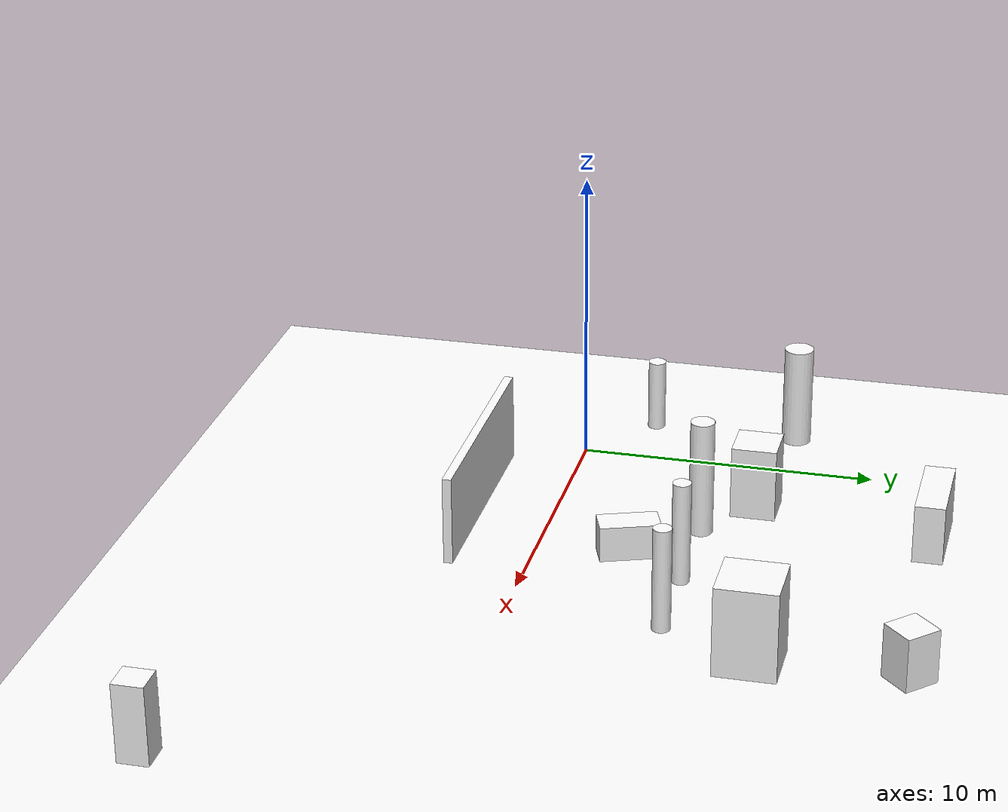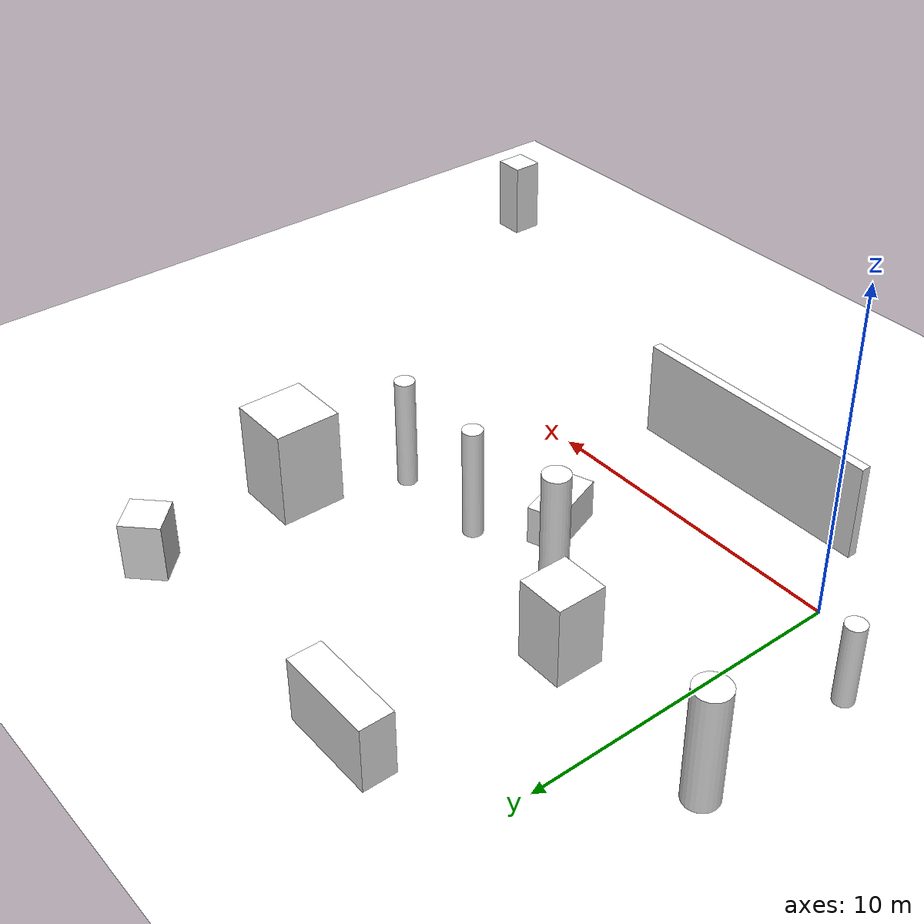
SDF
<?xml version="1.0" encoding="UTF-8"?>
<sdf version="1.9">
  <world name="demo_final">
    <physics type="ode">
      <max_step_size>0.004</max_step_size>
      <real_time_factor>1.0</real_time_factor>
      <real_time_update_rate>250</real_time_update_rate>
    </physics>
    <gravity>0 0 -9.8</gravity>
    <magnetic_field>6e-06 2.3e-05 -4.2e-05</magnetic_field>
    <atmosphere type="adiabatic"/>
    <scene>
      <grid>false</grid>
      <ambient>0.4 0.4 0.4 1</ambient>
      <background>0.7 0.7 0.7 1</background>
      <shadows>true</shadows>
    </scene>
    <model name="ground_plane">
      <static>true</static>
      <link name="link">
        <collision name="collision">
          <geometry>
            <plane>
              <normal>0 0 1</normal>
              <size>1 1</size>
            </plane>
          </geometry>
          <surface>
            <friction>
              <ode/>
            </friction>
            <bounce/>
            <contact/>
          </surface>
        </collision>
        <pose>0 0 0 0 -0 0</pose>
        <inertial>
          <pose>0 0 0 0 -0 0</pose>
          <mass>1</mass>
          <inertia>
            <ixx>1</ixx>
            <ixy>0</ixy>
            <ixz>0</ixz>
            <iyy>1</iyy>
            <iyz>0</iyz>
            <izz>1</izz>
          </inertia>
        </inertial>
        <enable_wind>false</enable_wind>
      </link>
      <pose>0 0 0 0 -0 0</pose>
      <self_collide>false</self_collide>
    </model>
    <include>
      <uri>model://flow_ground</uri>
    </include>
    <model name="pillar_centre">
      <static>true</static>
      <pose>5.0 5.0 2.0 0 0 0.000000</pose>
      <link name="link">
        <collision name="collision"><geometry><cylinder><radius>0.4</radius><length>4.0</length></cylinder></geometry></collision>
        <visual name="visual">
          <geometry><cylinder><radius>0.4</radius><length>4.0</length></cylinder></geometry>
          <material>
            <diffuse>1 1 1 1</diffuse>
            <pbr><metal>
              <albedo_map>model://flow_ground/materials/textures/flow_ground.png</albedo_map>
              <roughness>0.9</roughness><metalness>0.0</metalness>
            </metal></pbr>
          </material>
        </visual>
      </link>
    </model>
    <model name="box_tall">
      <static>true</static>
      <pose>3.0 6.5 1.25 0 0 0.000000</pose>
      <link name="link">
        <collision name="collision"><geometry><box><size>1.5 1.5 2.5</size></box></geometry></collision>
        <visual name="visual">
          <geometry><box><size>1.5 1.5 2.5</size></box></geometry>
          <material>
            <diffuse>1 1 1 1</diffuse>
            <pbr><metal>
              <albedo_map>model://flow_ground/materials/textures/flow_ground.png</albedo_map>
              <roughness>0.9</roughness><metalness>0.0</metalness>
            </metal></pbr>
          </material>
        </visual>
      </link>
    </model>
    <model name="box_low">
      <static>true</static>
      <pose>7.0 3.0 0.6 0 0 0.349066</pose>
      <link name="link">
        <collision name="collision"><geometry><box><size>1.0 2.0 1.2</size></box></geometry></collision>
        <visual name="visual">
          <geometry><box><size>1.0 2.0 1.2</size></box></geometry>
          <material>
            <diffuse>1 1 1 1</diffuse>
            <pbr><metal>
              <albedo_map>model://flow_ground/materials/textures/flow_ground.png</albedo_map>
              <roughness>0.9</roughness><metalness>0.0</metalness>
            </metal></pbr>
          </material>
        </visual>
      </link>
    </model>
    <model name="gate_west">
      <static>true</static>
      <pose>8.45 5.0 1.75 0 0 0.000000</pose>
      <link name="link">
        <collision name="collision"><geometry><cylinder><radius>0.3</radius><length>3.5</length></cylinder></geometry></collision>
        <visual name="visual">
          <geometry><cylinder><radius>0.3</radius><length>3.5</length></cylinder></geometry>
          <material>
            <diffuse>1 1 1 1</diffuse>
            <pbr><metal>
              <albedo_map>model://flow_ground/materials/textures/flow_ground.png</albedo_map>
              <roughness>0.9</roughness><metalness>0.0</metalness>
            </metal></pbr>
          </material>
        </visual>
      </link>
    </model>
    <model name="gate_east">
      <static>true</static>
      <pose>11.55 5.0 1.75 0 0 0.000000</pose>
      <link name="link">
        <collision name="collision"><geometry><cylinder><radius>0.3</radius><length>3.5</length></cylinder></geometry></collision>
        <visual name="visual">
          <geometry><cylinder><radius>0.3</radius><length>3.5</length></cylinder></geometry>
          <material>
            <diffuse>1 1 1 1</diffuse>
            <pbr><metal>
              <albedo_map>model://flow_ground/materials/textures/flow_ground.png</albedo_map>
              <roughness>0.9</roughness><metalness>0.0</metalness>
            </metal></pbr>
          </material>
        </visual>
      </link>
    </model>
    <model name="wall_south">
      <static>true</static>
      <pose>5.0 -2.5 1.5 0 0 0.000000</pose>
      <link name="link">
        <collision name="collision"><geometry><box><size>8.0 0.3 3.0</size></box></geometry></collision>
        <visual name="visual">
          <geometry><box><size>8.0 0.3 3.0</size></box></geometry>
          <material>
            <diffuse>1 1 1 1</diffuse>
            <pbr><metal>
              <albedo_map>model://flow_ground/materials/textures/flow_ground.png</albedo_map>
              <roughness>0.9</roughness><metalness>0.0</metalness>
            </metal></pbr>
          </material>
        </visual>
      </link>
    </model>
    <model name="box_east">
      <static>true</static>
      <pose>13.0 8.0 1.5 0 0 0.000000</pose>
      <link name="link">
        <collision name="collision"><geometry><box><size>2.0 2.0 3.0</size></box></geometry></collision>
        <visual name="visual">
          <geometry><box><size>2.0 2.0 3.0</size></box></geometry>
          <material>
            <diffuse>1 1 1 1</diffuse>
            <pbr><metal>
              <albedo_map>model://flow_ground/materials/textures/flow_ground.png</albedo_map>
              <roughness>0.9</roughness><metalness>0.0</metalness>
            </metal></pbr>
          </material>
        </visual>
      </link>
    </model>
    <model name="box_north">
      <static>true</static>
      <pose>4.0 12.5 1.0 0 0 0.000000</pose>
      <link name="link">
        <collision name="collision"><geometry><box><size>3.0 1.0 2.0</size></box></geometry></collision>
        <visual name="visual">
          <geometry><box><size>3.0 1.0 2.0</size></box></geometry>
          <material>
            <diffuse>1 1 1 1</diffuse>
            <pbr><metal>
              <albedo_map>model://flow_ground/materials/textures/flow_ground.png</albedo_map>
              <roughness>0.9</roughness><metalness>0.0</metalness>
            </metal></pbr>
          </material>
        </visual>
      </link>
    </model>
    <model name="pillar_nw">
      <static>true</static>
      <pose>-2.5 7.0 1.75 0 0 0.000000</pose>
      <link name="link">
        <collision name="collision"><geometry><cylinder><radius>0.5</radius><length>3.5</length></cylinder></geometry></collision>
        <visual name="visual">
          <geometry><cylinder><radius>0.5</radius><length>3.5</length></cylinder></geometry>
          <material>
            <diffuse>1 1 1 1</diffuse>
            <pbr><metal>
              <albedo_map>model://flow_ground/materials/textures/flow_ground.png</albedo_map>
              <roughness>0.9</roughness><metalness>0.0</metalness>
            </metal></pbr>
          </material>
        </visual>
      </link>
    </model>
    <model name="pillar_sw">
      <static>true</static>
      <pose>-2.5 2.0 1.25 0 0 0.000000</pose>
      <link name="link">
        <collision name="collision"><geometry><cylinder><radius>0.3</radius><length>2.5</length></cylinder></geometry></collision>
        <visual name="visual">
          <geometry><cylinder><radius>0.3</radius><length>2.5</length></cylinder></geometry>
          <material>
            <diffuse>1 1 1 1</diffuse>
            <pbr><metal>
              <albedo_map>model://flow_ground/materials/textures/flow_ground.png</albedo_map>
              <roughness>0.9</roughness><metalness>0.0</metalness>
            </metal></pbr>
          </material>
        </visual>
      </link>
    </model>
    <model name="box_ne_corner">
      <static>true</static>
      <pose>12.8 12.8 0.9 0 0 0.785398</pose>
      <link name="link">
        <collision name="collision"><geometry><box><size>1.2 1.2 1.8</size></box></geometry></collision>
        <visual name="visual">
          <geometry><box><size>1.2 1.2 1.8</size></box></geometry>
          <material>
            <diffuse>1 1 1 1</diffuse>
            <pbr><metal>
              <albedo_map>model://flow_ground/materials/textures/flow_ground.png</albedo_map>
              <roughness>0.9</roughness><metalness>0.0</metalness>
            </metal></pbr>
          </material>
        </visual>
      </link>
    </model>
    <model name="intruder">
      <static>false</static>
      <pose>22.0 -8.0 1.3 0 0 0.000000</pose>
      <link name="link">
        <gravity>false</gravity>
        <inertial><mass>50</mass></inertial>
        <collision name="collision"><geometry><box><size>1.0 1.0 2.6</size></box></geometry></collision>
        <visual name="visual">
          <geometry><box><size>1.0 1.0 2.6</size></box></geometry>
          <material>
            <diffuse>1 1 1 1</diffuse>
            <pbr><metal>
              <albedo_map>model://flow_ground/materials/textures/flow_ground.png</albedo_map>
              <roughness>0.9</roughness><metalness>0.0</metalness>
            </metal></pbr>
          </material>
        </visual>
      </link>
    </model>
    <model name="flythrough_camera">
      <static>true</static>
      <pose>5.0 -9.0 11.0 0.0 0.85 1.5708</pose>
      <link name="link">
        <sensor name="flythrough" type="camera">
          <update_rate>15</update_rate>
          <always_on>1</always_on>
          <topic>flythrough/image</topic>
          <camera>
            <horizontal_fov>1.3</horizontal_fov>
            <image><width>960</width><height>540</height></image>
            <clip><near>0.5</near><far>100</far></clip>
          </camera>
          <plugin filename="gz-sim-camera-video-recorder-system"
                  name="gz::sim::systems::CameraVideoRecorder">
            <service>/flythrough/record_video</service>
            <use_sim_time>true</use_sim_time>
            <fps>15</fps>
            <bitrate>4000000</bitrate>
          </plugin>
        </sensor>
      </link>
    </model>
    <light name="sunUTC" type="directional">
      <pose>0 0 500 0 -0 0</pose>
      <cast_shadows>true</cast_shadows>
      <intensity>1</intensity>
      <direction>0.001 0.625 -0.78</direction>
      <diffuse>0.904 0.904 0.904 1</diffuse>
      <specular>0.271 0.271 0.271 1</specular>
      <attenuation>
        <range>2000</range>
        <linear>0</linear>
        <constant>1</constant>
        <quadratic>0</quadratic>
      </attenuation>
      <spot>
        <inner_angle>0</inner_angle>
        <outer_angle>0</outer_angle>
        <falloff>0</falloff>
      </spot>
    </light>
    <spherical_coordinates>
      <surface_model>EARTH_WGS84</surface_model>
      <world_frame_orientation>ENU</world_frame_orientation>
      <latitude_deg>47.397971057728974</latitude_deg>
      <longitude_deg> 8.546163739800146</longitude_deg>
      <elevation>0</elevation>
    </spherical_coordinates>
  </world>
</sdf>

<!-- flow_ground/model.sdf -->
<sdf version="1.9">
  <!-- Visual only: collision comes from the world's infinite ground plane. The
       mesh sits 1 mm above it to avoid z-fighting with anything drawn at z=0. -->
  <model name="flow_ground">
    <static>true</static>
    <link name="link">
      <visual name="visual">
        <pose>0 0 0.001 0 0 0</pose>
        <geometry>
          <mesh>
            <uri>model://flow_ground/meshes/ground.obj</uri>
          </mesh>
        </geometry>
        <material>
          <diffuse>1 1 1 1</diffuse>
          <specular>0.1 0.1 0.1 1</specular>
          <pbr>
            <metal>
              <albedo_map>model://flow_ground/materials/textures/flow_ground.png</albedo_map>
              <roughness>0.9</roughness>
              <metalness>0.0</metalness>
            </metal>
          </pbr>
        </material>
      </visual>
    </link>
  </model>
</sdf>
